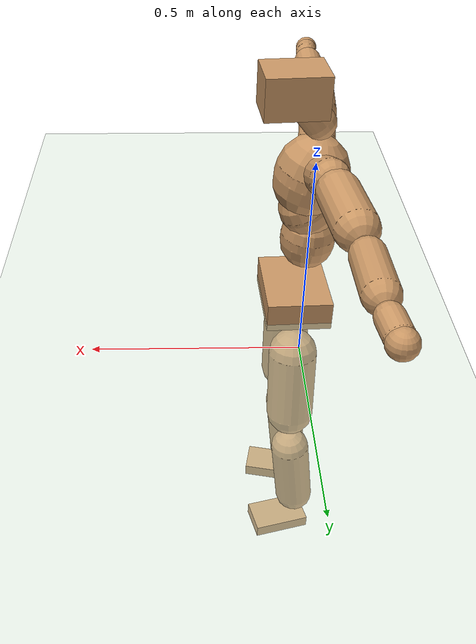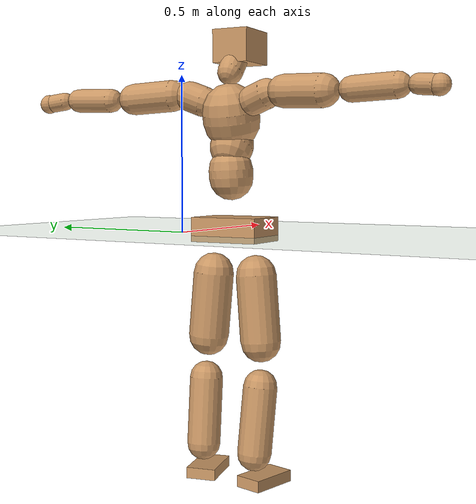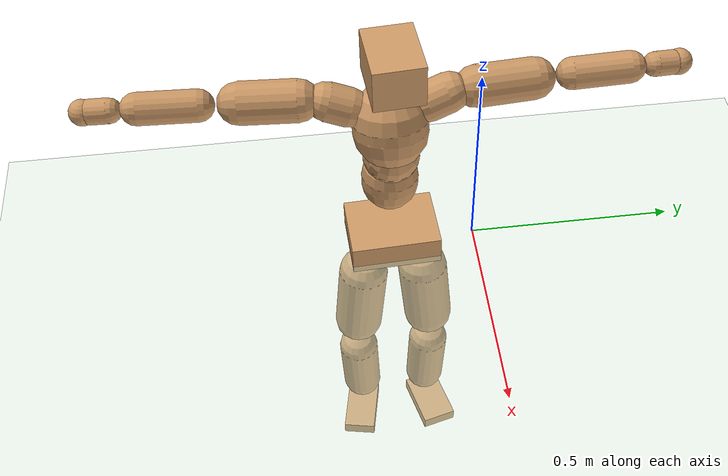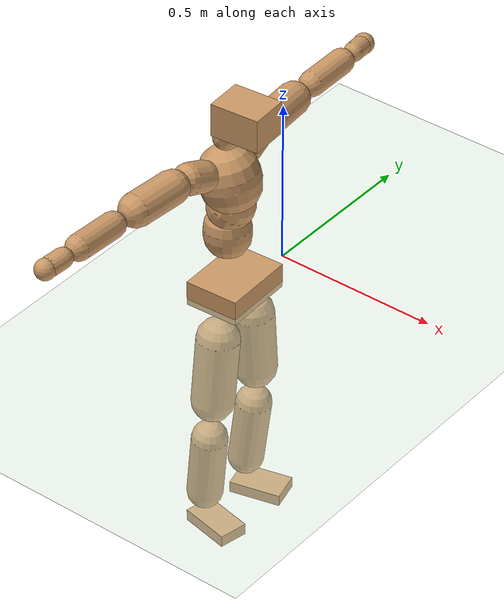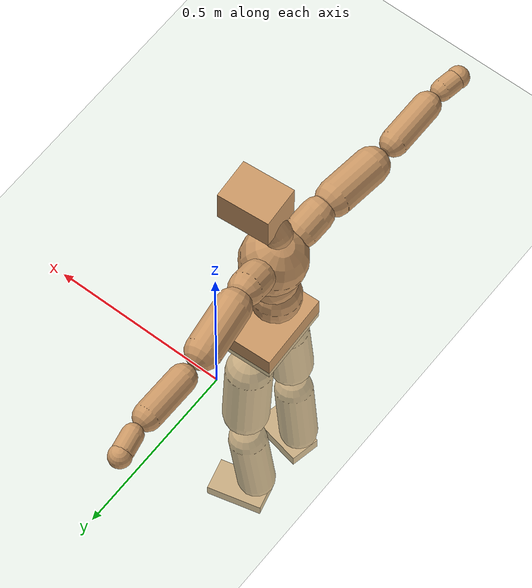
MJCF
<mujoco model="humanoid">
  <compiler coordinate="local" angle="radian"/>
  <default>
    <joint damping="0.0" armature="0.01" stiffness="0.0" limited="true"/>
    <geom conaffinity="1" condim="3" contype="7" margin="0.001" rgba="0.8 0.6 .4 1"/>
  </default>
  <asset>
    <texture type="skybox" builtin="gradient" rgb1=".4 .5 .6" rgb2="0 0 0" width="100" height="100"/>
    <texture builtin="flat" height="1278" mark="cross" markrgb="1 1 1" name="texgeom" random="0.01" rgb1="0.8 0.6 0.4" rgb2="0.8 0.6 0.4" type="cube" width="127"/>
    <texture builtin="checker" height="100" name="texplane" rgb1="0 0 0" rgb2="0.8 0.8 0.8" type="2d" width="100"/>
    <material name="MatPlane" reflectance="0.5" shininess="1" specular="1" texrepeat="60 60" texture="texplane"/>
    <material name="geom" texture="texgeom" texuniform="true"/>
  </asset>
  <worldbody>
    <light cutoff="100" diffuse="1 1 1" dir="-0 0 -1.3" directional="true" exponent="1" pos="0 0 1.3" specular=".1 .1 .1"/>
    <geom conaffinity="1" condim="3" name="floor" pos="0 0 0" rgba="0.8 0.9 0.8 1" size="100 100 .2" type="plane" material="MatPlane"/>
    <body name="Pelvis" pos="-0.0019 -0.2015 0.0293">
      <freejoint name="Pelvis"/>
      <geom type="box" contype="1" conaffinity="1" density="500" pos="-0.0052 -0.0002 -0.0117" size="0.0817 0.1096 0.0379" quat="0.9998 0.0000 0.0000 0.0206" name="Pelvis"/>
      <body name="L_Hip" pos="-0.0038 0.0715 -0.0845">
        <joint name="L_Hip_x" type="hinge" pos="0 0 0" axis="1 0 0" stiffness="800" damping="80" armature="0.02" range="-180.0000 180.0000"/>
        <joint name="L_Hip_y" type="hinge" pos="0 0 0" axis="0 1 0" stiffness="800" damping="80" armature="0.02" range="-180.0000 180.0000"/>
        <joint name="L_Hip_z" type="hinge" pos="0 0 0" axis="0 0 1" stiffness="800" damping="80" armature="0.02" range="-180.0000 180.0000"/>
        <geom type="capsule" contype="1" conaffinity="1" density="500" fromto="-0.0008 0.0057 -0.0672 -0.0031 0.0226 -0.2689" size="0.0631" name="L_Hip"/>
        <body name="L_Knee" pos="-0.0039 0.0283 -0.3361">
          <joint name="L_Knee_x" type="hinge" pos="0 0 0" axis="1 0 0" stiffness="800" damping="80" armature="0.02" range="-180.0000 180.0000"/>
          <joint name="L_Knee_y" type="hinge" pos="0 0 0" axis="0 1 0" stiffness="800" damping="80" armature="0.02" range="-180.0000 180.0000"/>
          <joint name="L_Knee_z" type="hinge" pos="0 0 0" axis="0 0 1" stiffness="800" damping="80" armature="0.02" range="-180.0000 180.0000"/>
          <geom type="capsule" contype="1" conaffinity="1" density="500" fromto="-0.0082 -0.0018 -0.0689 -0.0328 -0.0071 -0.2758" size="0.0527" name="L_Knee"/>
          <body name="L_Ankle" pos="-0.0409 -0.0089 -0.3447">
            <joint name="L_Ankle_x" type="hinge" pos="0 0 0" axis="1 0 0" stiffness="800" damping="80" armature="0.02" range="-180.0000 180.0000"/>
            <joint name="L_Ankle_y" type="hinge" pos="0 0 0" axis="0 1 0" stiffness="800" damping="80" armature="0.02" range="-180.0000 180.0000"/>
            <joint name="L_Ankle_z" type="hinge" pos="0 0 0" axis="0 0 1" stiffness="800" damping="80" armature="0.02" range="-180.0000 180.0000"/>
            <geom type="box" contype="1" conaffinity="1" density="500" pos="0.0533 0.0134 -0.0250" size="0.0781 0.0464 0.0175" quat="0.9925 0.0000 0.0000 0.1225" name="L_Ankle"/>
            <body name="L_Toe" pos="0.1065 0.0267 -0.05">
              <joint name="L_Toe_x" type="hinge" pos="0 0 0" axis="1 0 0" stiffness="500" damping="50" armature="0.02" range="-180.0000 180.0000"/>
              <joint name="L_Toe_y" type="hinge" pos="0 0 0" axis="0 1 0" stiffness="500" damping="50" armature="0.02" range="-180.0000 180.0000"/>
              <joint name="L_Toe_z" type="hinge" pos="0 0 0" axis="0 0 1" stiffness="500" damping="50" armature="0.02" range="-180.0000 180.0000"/>
              <geom type="box" contype="1" conaffinity="1" density="500" pos="0.0000 0.0000 0.0259" size="0.0009 0.0023 0.0009" quat="0.9917 0.0000 0.0000 0.1290" name="L_Toe"/>
            </body>
          </body>
        </body>
      </body>
      <body name="R_Hip" pos="-0.0022 -0.07 -0.0834">
        <joint name="R_Hip_x" type="hinge" pos="0 0 0" axis="1 0 0" stiffness="800" damping="80" armature="0.02" range="-180.0000 180.0000"/>
        <joint name="R_Hip_y" type="hinge" pos="0 0 0" axis="0 1 0" stiffness="800" damping="80" armature="0.02" range="-180.0000 180.0000"/>
        <joint name="R_Hip_z" type="hinge" pos="0 0 0" axis="0 0 1" stiffness="800" damping="80" armature="0.02" range="-180.0000 180.0000"/>
        <geom type="capsule" contype="1" conaffinity="1" density="500" fromto="-0.0013 -0.0064 -0.0686 -0.0053 -0.0257 -0.2743" size="0.0625" name="R_Hip"/>
        <body name="R_Knee" pos="-0.0066 -0.0321 -0.3429">
          <joint name="R_Knee_x" type="hinge" pos="0 0 0" axis="1 0 0" stiffness="800" damping="80" armature="0.02" range="-180.0000 180.0000"/>
          <joint name="R_Knee_y" type="hinge" pos="0 0 0" axis="0 1 0" stiffness="800" damping="80" armature="0.02" range="-180.0000 180.0000"/>
          <joint name="R_Knee_z" type="hinge" pos="0 0 0" axis="0 0 1" stiffness="800" damping="80" armature="0.02" range="-180.0000 180.0000"/>
          <geom type="capsule" contype="1" conaffinity="1" density="500" fromto="-0.0081 0.0021 -0.0690 -0.0323 0.0084 -0.2759" size="0.0528" name="R_Knee"/>
          <body name="R_Ankle" pos="-0.0404 0.0106 -0.3449">
            <joint name="R_Ankle_x" type="hinge" pos="0 0 0" axis="1 0 0" stiffness="800" damping="80" armature="0.02" range="-180.0000 180.0000"/>
            <joint name="R_Ankle_y" type="hinge" pos="0 0 0" axis="0 1 0" stiffness="800" damping="80" armature="0.02" range="-180.0000 180.0000"/>
            <joint name="R_Ankle_z" type="hinge" pos="0 0 0" axis="0 0 1" stiffness="800" damping="80" armature="0.02" range="-180.0000 180.0000"/>
            <geom type="box" contype="1" conaffinity="1" density="500" pos="0.0547 -0.0111 -0.0210" size="0.0775 0.0435 0.0181" quat="0.9950 0.0000 0.0000 -0.1002" name="R_Ankle"/>
            <body name="R_Toe" pos="0.1093 -0.0223 -0.042">
              <joint name="R_Toe_x" type="hinge" pos="0 0 0" axis="1 0 0" stiffness="500" damping="50" armature="0.02" range="-180.0000 180.0000"/>
              <joint name="R_Toe_y" type="hinge" pos="0 0 0" axis="0 1 0" stiffness="500" damping="50" armature="0.02" range="-180.0000 180.0000"/>
              <joint name="R_Toe_z" type="hinge" pos="0 0 0" axis="0 0 1" stiffness="500" damping="50" armature="0.02" range="-180.0000 180.0000"/>
              <geom type="box" contype="1" conaffinity="1" density="500" pos="0.0000 0.0000 0.0230" size="0.0008 0.0022 0.001" quat="0.9960 0.0000 0.0000 -0.0899" name="R_Toe"/>
            </body>
          </body>
        </body>
      </body>
      <body name="Torso" pos="-0.0255 -0.0028 0.0976">
        <joint name="Torso_x" type="hinge" pos="0 0 0" axis="1 0 0" stiffness="1000" damping="100" armature="0.02" range="-180.0000 180.0000"/>
        <joint name="Torso_y" type="hinge" pos="0 0 0" axis="0 1 0" stiffness="1000" damping="100" armature="0.02" range="-180.0000 180.0000"/>
        <joint name="Torso_z" type="hinge" pos="0 0 0" axis="0 0 1" stiffness="1000" damping="100" armature="0.02" range="-180.0000 180.0000"/>
        <geom type="capsule" contype="1" conaffinity="1" density="500" fromto="-0.0039 0.0025 0.0740 -0.0026 0.0017 0.0493" size="0.068" name="Torso"/>
        <body name="Spine" pos="-0.0064 0.0041 0.1233">
          <joint name="Spine_x" type="hinge" pos="0 0 0" axis="1 0 0" stiffness="1000" damping="100" armature="0.02" range="-180.0000 180.0000"/>
          <joint name="Spine_y" type="hinge" pos="0 0 0" axis="0 1 0" stiffness="1000" damping="100" armature="0.02" range="-180.0000 180.0000"/>
          <joint name="Spine_z" type="hinge" pos="0 0 0" axis="0 0 1" stiffness="1000" damping="100" armature="0.02" range="-180.0000 180.0000"/>
          <geom type="capsule" contype="1" conaffinity="1" density="500" fromto="0.0155 0.0011 0.0278 0.0103 0.0007 0.0185" size="0.0671" name="Spine"/>
          <body name="Chest" pos="0.0259 0.0018 0.0464">
            <joint name="Chest_x" type="hinge" pos="0 0 0" axis="1 0 0" stiffness="1000" damping="100" armature="0.02" range="-180.0000 180.0000"/>
            <joint name="Chest_y" type="hinge" pos="0 0 0" axis="0 1 0" stiffness="1000" damping="100" armature="0.02" range="-180.0000 180.0000"/>
            <joint name="Chest_z" type="hinge" pos="0 0 0" axis="0 0 1" stiffness="1000" damping="100" armature="0.02" range="-180.0000 180.0000"/>
            <geom type="capsule" contype="1" conaffinity="1" density="500" fromto="-0.0206 -0.0009 0.0796 -0.0137 -0.0006 0.0531" size="0.0881" name="Chest"/>
            <body name="Neck" pos="-0.0367 -0.0029 0.187">
              <joint name="Neck_x" type="hinge" pos="0 0 0" axis="1 0 0" stiffness="500" damping="50" armature="0.02" range="-180.0000 180.0000"/>
              <joint name="Neck_y" type="hinge" pos="0 0 0" axis="0 1 0" stiffness="500" damping="50" armature="0.02" range="-180.0000 180.0000"/>
              <joint name="Neck_z" type="hinge" pos="0 0 0" axis="0 0 1" stiffness="500" damping="50" armature="0.02" range="-180.0000 180.0000"/>
              <geom type="capsule" contype="1" conaffinity="1" density="500" fromto="0.0098 0.0004 0.0122 0.0392 0.0014 0.0489" size="0.0392" name="Neck"/>
              <body name="Head" pos="0.049 0.0018 0.0612">
                <joint name="Head_x" type="hinge" pos="0 0 0" axis="1 0 0" stiffness="500" damping="50" armature="0.02" range="-180.0000 180.0000"/>
                <joint name="Head_y" type="hinge" pos="0 0 0" axis="0 1 0" stiffness="500" damping="50" armature="0.02" range="-180.0000 180.0000"/>
                <joint name="Head_z" type="hinge" pos="0 0 0" axis="0 0 1" stiffness="500" damping="50" armature="0.02" range="-180.0000 180.0000"/>
                <geom type="box" contype="1" conaffinity="1" density="500" pos="0.0255 0.0019 0.0316" size="0.0739 0.0575 0.0504" quat="0.9993 0.0000 0.0000 0.0370" name="Head"/>
              </body>
            </body>
            <body name="L_Thorax" pos="-0.0304 0.0703 0.1065">
              <joint name="L_Thorax_x" type="hinge" pos="0 0 0" axis="1 0 0" stiffness="500" damping="50" armature="0.02" range="-180.0000 180.0000"/>
              <joint name="L_Thorax_y" type="hinge" pos="0 0 0" axis="0 1 0" stiffness="500" damping="50" armature="0.02" range="-180.0000 180.0000"/>
              <joint name="L_Thorax_z" type="hinge" pos="0 0 0" axis="0 0 1" stiffness="500" damping="50" armature="0.02" range="-180.0000 180.0000"/>
              <geom type="capsule" contype="1" conaffinity="1" density="500" fromto="-0.0017 0.0162 0.0062 -0.0067 0.0647 0.0246" size="0.0467" name="L_Thorax"/>
              <body name="L_Shoulder" pos="-0.0084 0.0809 0.0308">
                <joint name="L_Shoulder_x" type="hinge" pos="0 0 0" axis="1 0 0" stiffness="500" damping="50" armature="0.02" range="-720.0000 720.0000"/>
                <joint name="L_Shoulder_y" type="hinge" pos="0 0 0" axis="0 1 0" stiffness="500" damping="50" armature="0.02" range="-720.0000 720.0000"/>
                <joint name="L_Shoulder_z" type="hinge" pos="0 0 0" axis="0 0 1" stiffness="500" damping="50" armature="0.02" range="-720.0000 720.0000"/>
                <geom type="capsule" contype="1" conaffinity="1" density="500" fromto="-0.0058 0.0455 -0.0023 -0.0232 0.1822 -0.0092" size="0.049" name="L_Shoulder"/>
                <body name="L_Elbow" pos="-0.029 0.2277 -0.0114">
                  <joint name="L_Elbow_x" type="hinge" pos="0 0 0" axis="1 0 0" stiffness="500" damping="50" armature="0.02" range="-720.0000 720.0000"/>
                  <joint name="L_Elbow_y" type="hinge" pos="0 0 0" axis="0 1 0" stiffness="500" damping="50" armature="0.02" range="-720.0000 720.0000"/>
                  <joint name="L_Elbow_z" type="hinge" pos="0 0 0" axis="0 0 1" stiffness="500" damping="50" armature="0.02" range="-720.0000 720.0000"/>
                  <geom type="capsule" contype="1" conaffinity="1" density="500" fromto="0.0001 0.0445 0.0016 0.0004 0.1781 0.0063" size="0.0378" name="L_Elbow"/>
                  <body name="L_Wrist" pos="0.0005 0.2226 0.0079">
                    <joint name="L_Wrist_x" type="hinge" pos="0 0 0" axis="1 0 0" stiffness="300" damping="30" armature="0.02" range="-180.0000 180.0000"/>
                    <joint name="L_Wrist_y" type="hinge" pos="0 0 0" axis="0 1 0" stiffness="300" damping="30" armature="0.02" range="-180.0000 180.0000"/>
                    <joint name="L_Wrist_z" type="hinge" pos="0 0 0" axis="0 0 1" stiffness="300" damping="30" armature="0.02" range="-180.0000 180.0000"/>
                    <geom type="capsule" contype="1" conaffinity="1" density="500" fromto="-0.0025 0.0152 -0.0019 -0.0101 0.0608 -0.0075" size="0.0289" name="L_Wrist"/>
                    <body name="L_Hand" pos="-0.0126 0.076 -0.0094">
                      <joint name="L_Hand_x" type="hinge" pos="0 0 0" axis="1 0 0" stiffness="300" damping="30" armature="0.02" range="-180.0000 180.0000"/>
                      <joint name="L_Hand_y" type="hinge" pos="0 0 0" axis="0 1 0" stiffness="300" damping="30" armature="0.02" range="-180.0000 180.0000"/>
                      <joint name="L_Hand_z" type="hinge" pos="0 0 0" axis="0 0 1" stiffness="300" damping="30" armature="0.02" range="-180.0000 180.0000"/>
                      <geom type="sphere" contype="1" conaffinity="1" density="500" size="0.0308" pos="0.0000 0.0000 0.0000" name="L_Hand"/>
                    </body>
                  </body>
                </body>
              </body>
            </body>
            <body name="R_Thorax" pos="-0.0358 -0.0721 0.1046">
              <joint name="R_Thorax_x" type="hinge" pos="0 0 0" axis="1 0 0" stiffness="500" damping="50" armature="0.02" range="-180.0000 180.0000"/>
              <joint name="R_Thorax_y" type="hinge" pos="0 0 0" axis="0 1 0" stiffness="500" damping="50" armature="0.02" range="-180.0000 180.0000"/>
              <joint name="R_Thorax_z" type="hinge" pos="0 0 0" axis="0 0 1" stiffness="500" damping="50" armature="0.02" range="-180.0000 180.0000"/>
              <geom type="capsule" contype="1" conaffinity="1" density="500" fromto="-0.0022 -0.0169 0.0058 -0.0087 -0.0676 0.0232" size="0.0454" name="R_Thorax"/>
              <body name="R_Shoulder" pos="-0.0109 -0.0845 0.029">
                <joint name="R_Shoulder_x" type="hinge" pos="0 0 0" axis="1 0 0" stiffness="500" damping="50" armature="0.02" range="-720.0000 720.0000"/>
                <joint name="R_Shoulder_y" type="hinge" pos="0 0 0" axis="0 1 0" stiffness="500" damping="50" armature="0.02" range="-720.0000 720.0000"/>
                <joint name="R_Shoulder_z" type="hinge" pos="0 0 0" axis="0 0 1" stiffness="500" damping="50" armature="0.02" range="-720.0000 720.0000"/>
                <geom type="capsule" contype="1" conaffinity="1" density="500" fromto="-0.0045 -0.0442 -0.0016 -0.0179 -0.1768 -0.0064" size="0.0493" name="R_Shoulder"/>
                <body name="R_Elbow" pos="-0.0223 -0.221 -0.008">
                  <joint name="R_Elbow_x" type="hinge" pos="0 0 0" axis="1 0 0" stiffness="500" damping="50" armature="0.02" range="-720.0000 720.0000"/>
                  <joint name="R_Elbow_y" type="hinge" pos="0 0 0" axis="0 1 0" stiffness="500" damping="50" armature="0.02" range="-720.0000 720.0000"/>
                  <joint name="R_Elbow_z" type="hinge" pos="0 0 0" axis="0 0 1" stiffness="500" damping="50" armature="0.02" range="-720.0000 720.0000"/>
                  <geom type="capsule" contype="1" conaffinity="1" density="500" fromto="-0.0004 -0.0449 0.0014 -0.0015 -0.1795 0.0057" size="0.0374" name="R_Elbow"/>
                  <body name="R_Wrist" pos="-0.0019 -0.2243 0.0071">
                    <joint name="R_Wrist_x" type="hinge" pos="0 0 0" axis="1 0 0" stiffness="300" damping="30" armature="0.02" range="-180.0000 180.0000"/>
                    <joint name="R_Wrist_y" type="hinge" pos="0 0 0" axis="0 1 0" stiffness="300" damping="30" armature="0.02" range="-180.0000 180.0000"/>
                    <joint name="R_Wrist_z" type="hinge" pos="0 0 0" axis="0 0 1" stiffness="300" damping="30" armature="0.02" range="-180.0000 180.0000"/>
                    <geom type="capsule" contype="1" conaffinity="1" density="500" fromto="-0.0019 -0.0149 -0.0013 -0.0077 -0.0595 -0.0054" size="0.029" name="R_Wrist"/>
                    <body name="R_Hand" pos="-0.0096 -0.0744 -0.0067">
                      <joint name="R_Hand_x" type="hinge" pos="0 0 0" axis="1 0 0" stiffness="300" damping="30" armature="0.02" range="-180.0000 180.0000"/>
                      <joint name="R_Hand_y" type="hinge" pos="0 0 0" axis="0 1 0" stiffness="300" damping="30" armature="0.02" range="-180.0000 180.0000"/>
                      <joint name="R_Hand_z" type="hinge" pos="0 0 0" axis="0 0 1" stiffness="300" damping="30" armature="0.02" range="-180.0000 180.0000"/>
                      <geom type="sphere" contype="1" conaffinity="1" density="500" size="0.0302" pos="0.0000 0.0000 0.0000" name="R_Hand"/>
                    </body>
                  </body>
                </body>
              </body>
            </body>
          </body>
        </body>
      </body>
    </body>
  </worldbody>
  <actuator>
    <motor name="L_Hip_x" joint="L_Hip_x" gear="500"/>
    <motor name="L_Hip_y" joint="L_Hip_y" gear="500"/>
    <motor name="L_Hip_z" joint="L_Hip_z" gear="500"/>
    <motor name="L_Knee_x" joint="L_Knee_x" gear="500"/>
    <motor name="L_Knee_y" joint="L_Knee_y" gear="500"/>
    <motor name="L_Knee_z" joint="L_Knee_z" gear="500"/>
    <motor name="L_Ankle_x" joint="L_Ankle_x" gear="500"/>
    <motor name="L_Ankle_y" joint="L_Ankle_y" gear="500"/>
    <motor name="L_Ankle_z" joint="L_Ankle_z" gear="500"/>
    <motor name="L_Toe_x" joint="L_Toe_x" gear="500"/>
    <motor name="L_Toe_y" joint="L_Toe_y" gear="500"/>
    <motor name="L_Toe_z" joint="L_Toe_z" gear="500"/>
    <motor name="R_Hip_x" joint="R_Hip_x" gear="500"/>
    <motor name="R_Hip_y" joint="R_Hip_y" gear="500"/>
    <motor name="R_Hip_z" joint="R_Hip_z" gear="500"/>
    <motor name="R_Knee_x" joint="R_Knee_x" gear="500"/>
    <motor name="R_Knee_y" joint="R_Knee_y" gear="500"/>
    <motor name="R_Knee_z" joint="R_Knee_z" gear="500"/>
    <motor name="R_Ankle_x" joint="R_Ankle_x" gear="500"/>
    <motor name="R_Ankle_y" joint="R_Ankle_y" gear="500"/>
    <motor name="R_Ankle_z" joint="R_Ankle_z" gear="500"/>
    <motor name="R_Toe_x" joint="R_Toe_x" gear="500"/>
    <motor name="R_Toe_y" joint="R_Toe_y" gear="500"/>
    <motor name="R_Toe_z" joint="R_Toe_z" gear="500"/>
    <motor name="Torso_x" joint="Torso_x" gear="500"/>
    <motor name="Torso_y" joint="Torso_y" gear="500"/>
    <motor name="Torso_z" joint="Torso_z" gear="500"/>
    <motor name="Spine_x" joint="Spine_x" gear="500"/>
    <motor name="Spine_y" joint="Spine_y" gear="500"/>
    <motor name="Spine_z" joint="Spine_z" gear="500"/>
    <motor name="Chest_x" joint="Chest_x" gear="500"/>
    <motor name="Chest_y" joint="Chest_y" gear="500"/>
    <motor name="Chest_z" joint="Chest_z" gear="500"/>
    <motor name="Neck_x" joint="Neck_x" gear="500"/>
    <motor name="Neck_y" joint="Neck_y" gear="500"/>
    <motor name="Neck_z" joint="Neck_z" gear="500"/>
    <motor name="Head_x" joint="Head_x" gear="500"/>
    <motor name="Head_y" joint="Head_y" gear="500"/>
    <motor name="Head_z" joint="Head_z" gear="500"/>
    <motor name="L_Thorax_x" joint="L_Thorax_x" gear="500"/>
    <motor name="L_Thorax_y" joint="L_Thorax_y" gear="500"/>
    <motor name="L_Thorax_z" joint="L_Thorax_z" gear="500"/>
    <motor name="L_Shoulder_x" joint="L_Shoulder_x" gear="500"/>
    <motor name="L_Shoulder_y" joint="L_Shoulder_y" gear="500"/>
    <motor name="L_Shoulder_z" joint="L_Shoulder_z" gear="500"/>
    <motor name="L_Elbow_x" joint="L_Elbow_x" gear="500"/>
    <motor name="L_Elbow_y" joint="L_Elbow_y" gear="500"/>
    <motor name="L_Elbow_z" joint="L_Elbow_z" gear="500"/>
    <motor name="L_Wrist_x" joint="L_Wrist_x" gear="500"/>
    <motor name="L_Wrist_y" joint="L_Wrist_y" gear="500"/>
    <motor name="L_Wrist_z" joint="L_Wrist_z" gear="500"/>
    <motor name="L_Hand_x" joint="L_Hand_x" gear="500"/>
    <motor name="L_Hand_y" joint="L_Hand_y" gear="500"/>
    <motor name="L_Hand_z" joint="L_Hand_z" gear="500"/>
    <motor name="R_Thorax_x" joint="R_Thorax_x" gear="500"/>
    <motor name="R_Thorax_y" joint="R_Thorax_y" gear="500"/>
    <motor name="R_Thorax_z" joint="R_Thorax_z" gear="500"/>
    <motor name="R_Shoulder_x" joint="R_Shoulder_x" gear="500"/>
    <motor name="R_Shoulder_y" joint="R_Shoulder_y" gear="500"/>
    <motor name="R_Shoulder_z" joint="R_Shoulder_z" gear="500"/>
    <motor name="R_Elbow_x" joint="R_Elbow_x" gear="500"/>
    <motor name="R_Elbow_y" joint="R_Elbow_y" gear="500"/>
    <motor name="R_Elbow_z" joint="R_Elbow_z" gear="500"/>
    <motor name="R_Wrist_x" joint="R_Wrist_x" gear="500"/>
    <motor name="R_Wrist_y" joint="R_Wrist_y" gear="500"/>
    <motor name="R_Wrist_z" joint="R_Wrist_z" gear="500"/>
    <motor name="R_Hand_x" joint="R_Hand_x" gear="500"/>
    <motor name="R_Hand_y" joint="R_Hand_y" gear="500"/>
    <motor name="R_Hand_z" joint="R_Hand_z" gear="500"/>
  </actuator>
  <contact>
    <exclude body1="Torso" body2="Chest"/>
    <exclude body1="Head" body2="Chest"/>
    <exclude body1="R_Knee" body2="R_Toe"/>
    <exclude body1="R_Knee" body2="L_Ankle"/>
    <exclude body1="R_Knee" body2="L_Toe"/>
    <exclude body1="L_Knee" body2="L_Toe"/>
    <exclude body1="L_Knee" body2="R_Ankle"/>
    <exclude body1="L_Knee" body2="R_Toe"/>
    <exclude body1="L_Shoulder" body2="Chest"/>
    <exclude body1="R_Shoulder" body2="Chest"/>
  </contact>
  <sensor/>
  <size njmax="700" nconmax="700"/>
</mujoco>
